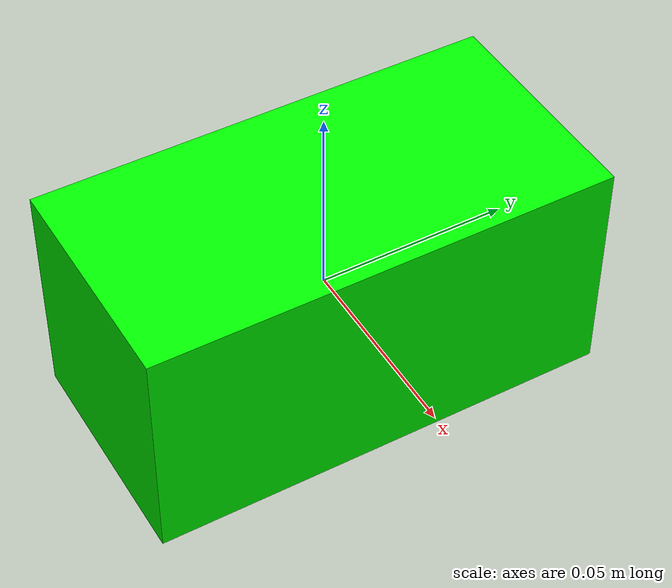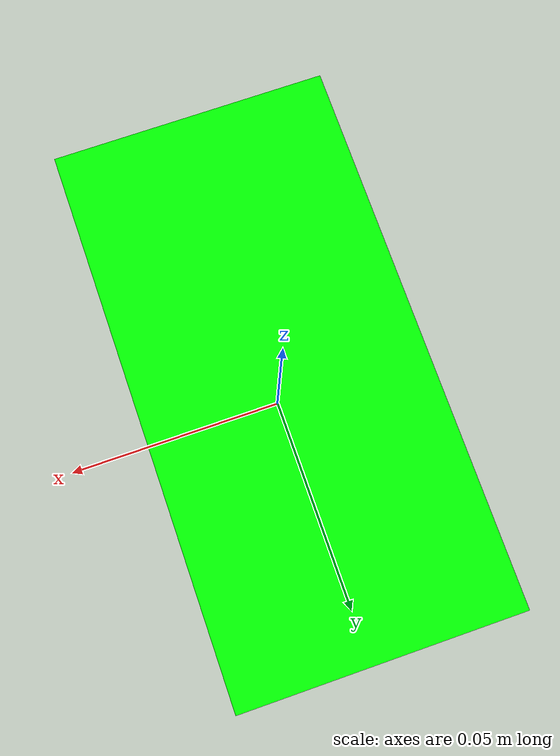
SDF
<?xml version="1.0"?>
<sdf version="1.7">
  <model name="block1">
    <pose> 0 0 0 0 0 0 </pose>
    <link name="block1_link">
      <inertial>
        <mass>0.2</mass>
        <inertia>
          <ixx>0.027000516117494253</ixx>
          <ixy>0.0</ixy>
          <ixz>0.0</ixz>
          <iyy>0.028155796674108682</iyy>
          <iyz>0.0</iyz>
          <izz>0.027000516117494253</izz>
        </inertia>
      </inertial>
      <collision name="collision">
        <geometry>
          <box>
            <size> 0.06 0.12000000000000001 0.06 </size>
          </box>
        </geometry>
        <surface>
            <friction>
                <ode>
                    <mu>1.0</mu>
                    <mu2>1.0</mu2>
                </ode>
            </friction>
        </surface>
      </collision>
      <visual name="visual">
        <geometry>
          <box>
            <size> 0.06 0.12000000000000001 0.06 </size>
          </box>
        </geometry>
        <material>
          <diffuse>0 1 0 1</diffuse>
        </material>
      </visual>
    </link>
  </model>
</sdf>
